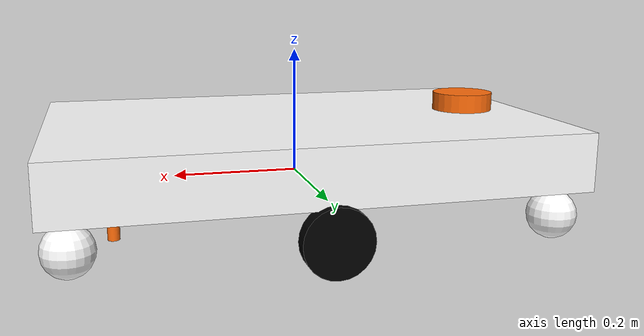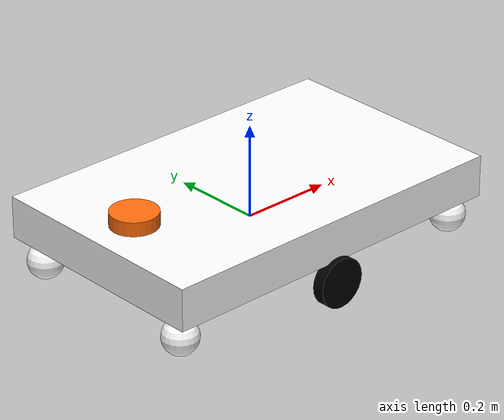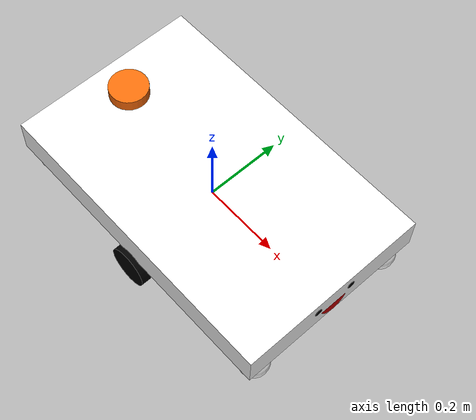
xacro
<?xml version="1.0"?>
<!-- Basic differential drive mobile base -->
<robot xmlns:xacro="http://www.ros.org/wiki/xacro" name="diffdrive_robot">
  <xacro:arg name="prefix" default="" />
  <xacro:arg name="use_mock_hardware" default="false" />

  <xacro:include filename="$(find next2_ros2control)/description/urdf/diffbot_description.urdf.xacro" />

  <!-- Import Rviz colors -->
  <xacro:include filename="$(find next2_ros2control)/description/urdf/diffbot.materials.xacro" />

  <!-- Import diffbot ros2_control description -->
  <xacro:include filename="$(find next2_ros2control)/description/ros2_control/diffbot.ros2_control.xacro" />

  <xacro:diffbot prefix="$(arg prefix)" />
  <xacro:include filename="$(find next2_ros2control)/description/urdf/face.xacro" />
  <xacro:include filename="$(find next2_ros2control)/description/urdf/lidar.xacro" />

  <xacro:diffbot_ros2_control
    name="DiffBot" prefix="$(arg prefix)" use_mock_hardware="$(arg use_mock_hardware)"/>

</robot>

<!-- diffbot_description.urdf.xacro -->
<robot xmlns:xacro="http://www.ros.org/wiki/xacro" name="next2_robot">

  <xacro:macro name="diffbot" params="prefix">

  <!-- Constants for robot dimensions -->
  <xacro:property name="PI" value="3.1415926535897931"/>
  <xacro:property name="base_mass" value="0.3" /> <!-- arbitrary value for base mass -->
  <xacro:property name="base_width" value="0.80" />
  <xacro:property name="base_length" value="0.50" />
  <xacro:property name="base_height" value="0.09" />
  <xacro:property name="wheel_mass" value="0.3" /> <!-- arbitrary value for wheel mass -->
  <xacro:property name="wheel_len" value="0.026" />
  <xacro:property name="wheel_radius" value="0.053" />
  <xacro:property name="caster_wheel_mass" value="0.1" /> <!-- arbitrary value for caster wheel mass -->
  <xacro:property name="caster_wheel_radius" value="0.038" />
  <xacro:property name="z_offset" value="-${base_height/2}" /> <!-- Space btw top of beam and the each joint -->

  <!-- Base Link -->
  <link name="${prefix}base_link">
    <collision>
      <origin xyz="0 0 0" rpy="0 0 0"/>
      <geometry>
        <box size="${base_width} ${base_length} ${base_height}"/>
      </geometry>
    </collision>

    <visual>
      <origin xyz="0 0 ${base_height/2}" rpy="0 0 0"/>
      <geometry>
        <box size="${base_width} ${base_length} ${base_height}"/>
      </geometry>
      <material name="white"/>
    </visual>

    <inertial>
      <origin xyz="0 0 0" rpy="0 0 0"/>
      <mass value="${base_mass}"/>
      <inertia
        ixx="${base_mass / 12.0 * (base_length*base_length + base_height*base_height)}" ixy="0.0" ixz="0.0"
        iyy="${base_mass / 12.0 * (base_height*base_height + base_width*base_width)}" iyz="0.0"
        izz="${base_mass / 12.0 * (base_width*base_width + base_length*base_length)}"/>
      </inertial>
    </link>

    <joint name="${prefix}left_wheel_joint" type="continuous">
      <parent link="${prefix}base_link"/>
      <child link="${prefix}left_wheel"/>
      <origin xyz="0 -${base_length/2} ${z_offset}" rpy="0 0 0"/>
      <axis xyz="0 1 0"/>
      <dynamics damping="0.2"/>
      <limit effort="100" velocity="1.0"/>
    </joint>

    <!-- left wheel Link -->
    <link name="${prefix}left_wheel">
      <collision>
        <origin xyz="0 0 0" rpy="${PI/2} 0 0"/>
        <geometry>
          <cylinder length="${wheel_len}" radius="${wheel_radius}"/>
        </geometry>
      </collision>

      <visual>
        <origin xyz="0 0 0" rpy="${PI/2} 0 0"/>
        <geometry>
          <cylinder length="${wheel_len}" radius="${wheel_radius}"/>
        </geometry>
        <material name="black"/>
      </visual>

      <inertial>
        <origin xyz="0 0 0" rpy="${PI/2} 0 0"/>
        <mass value="${wheel_mass}"/>
        <inertia
          ixx="${wheel_mass / 12.0 * (3*wheel_radius*wheel_radius + wheel_len*wheel_len)}" ixy="0.0" ixz="0.0"
          iyy="${wheel_mass / 12.0 * (3*wheel_radius*wheel_radius + wheel_len*wheel_len)}" iyz="0.0"
          izz="${wheel_mass / 2.0 * wheel_radius*wheel_radius}"/>
        </inertial>
      </link>

    <joint name="${prefix}right_wheel_joint" type="continuous">
      <parent link="${prefix}base_link"/>
      <child link="${prefix}right_wheel"/>
      <origin xyz="0 ${base_length/2} ${z_offset}" rpy="0 0 0"/>
      <axis xyz="0 1 0"/>
      <dynamics damping="0.2"/>
      <limit effort="100" velocity="1.0"/>
    </joint>

    <!-- right wheel Link -->
    <link name="${prefix}right_wheel">
      <collision>
        <origin xyz="0 0 0" rpy="${PI/2} 0 0"/>
        <geometry>
          <cylinder length="${wheel_len}" radius="${wheel_radius}"/>
        </geometry>
      </collision>

      <visual>
        <origin xyz="0 0 0" rpy="${PI/2} 0 0"/>
        <geometry>
          <cylinder length="${wheel_len}" radius="${wheel_radius}"/>
        </geometry>
        <material name="black"/>
      </visual>

      <inertial>
        <origin xyz="0 0 0" rpy="${PI/2} 0 0"/>
        <mass value="${wheel_mass}"/>
        <inertia
          ixx="${wheel_mass / 12.0 * (3*wheel_radius*wheel_radius + wheel_len*wheel_len)}" ixy="0.0" ixz="0.0"
          iyy="${wheel_mass / 12.0 * (3*wheel_radius*wheel_radius + wheel_len*wheel_len)}" iyz="0.0"
          izz="${wheel_mass / 2.0 * wheel_radius*wheel_radius}"/>
        </inertial>
      </link>

    <joint name="${prefix}caster_frontal_wheel_left_joint" type="fixed">
      <parent link="${prefix}base_link"/>
      <child link="${prefix}caster_frontal_left_wheel"/>
      <origin xyz="${base_width/2 - caster_wheel_radius} 0.20  ${z_offset}" rpy="0 0 0"/>
    </joint>

    <!-- caster frontal wheel left Link -->
    <link name="${prefix}caster_frontal_left_wheel">
      <collision>
        <origin xyz="0 0 0" rpy="0 0 0"/>
        <geometry>
          <sphere radius="${caster_wheel_radius}"/>
        </geometry>
      </collision>

      <visual>
        <origin xyz="0 0 0" rpy="0 0 0"/>
        <geometry>
          <sphere radius="${caster_wheel_radius}"/>
        </geometry>
        <material name="white"/>
      </visual>

      <inertial>
        <origin xyz="0 0 0" rpy="0 0 0"/>
        <mass value="${caster_wheel_mass}"/>
        <inertia
          ixx="${caster_wheel_mass * 0.4 * (caster_wheel_radius * caster_wheel_radius)}" ixy="0.0" ixz="0.0"
          iyy="${caster_wheel_mass * 0.4 * (caster_wheel_radius * caster_wheel_radius)}" iyz="0.0"
          izz="${caster_wheel_mass * 0.4 * (caster_wheel_radius * caster_wheel_radius)}"/>
        </inertial>
      </link>

    <joint name="${prefix}caster_frontal_wheel_right_joint" type="fixed">
      <parent link="${prefix}base_link"/>
      <child link="${prefix}caster_frontal_right_wheel"/>
      <origin xyz="${base_width/2 - caster_wheel_radius} -0.20 ${z_offset}" rpy="0 0 0"/>
    </joint>

    <!-- caster frontal wheel right Link -->
    <link name="${prefix}caster_frontal_right_wheel">
      <collision>
        <origin xyz="0 0 0" rpy="0 0 0"/>
        <geometry>
          <sphere radius="${caster_wheel_radius}"/>
        </geometry>
      </collision>

      <visual>
        <origin xyz="0 0 0" rpy="0 0 0"/>
        <geometry>
          <sphere radius="${caster_wheel_radius}"/>
        </geometry>
        <material name="white"/>
      </visual>

      <inertial>
        <origin xyz="0 0 0" rpy="0 0 0"/>
        <mass value="${caster_wheel_mass}"/>
        <inertia
          ixx="${caster_wheel_mass * 0.4 * (caster_wheel_radius * caster_wheel_radius)}" ixy="0.0" ixz="0.0"
          iyy="${caster_wheel_mass * 0.4 * (caster_wheel_radius * caster_wheel_radius)}" iyz="0.0"
          izz="${caster_wheel_mass * 0.4 * (caster_wheel_radius * caster_wheel_radius)}"/>
        </inertial>
      </link>

    <joint name="${prefix}caster_rear_wheel_left_joint" type="fixed">
      <parent link="${prefix}base_link"/>
      <child link="${prefix}caster_rear_left_wheel"/>
      <origin xyz="${-base_width/2 + caster_wheel_radius} 0.20 ${z_offset}" rpy="0 0 0"/>
    </joint>

    <!-- caster rear wheel left Link -->
    <link name="${prefix}caster_rear_left_wheel">
      <collision>
        <origin xyz="0 0 0" rpy="0 0 0"/>
        <geometry>
          <sphere radius="${caster_wheel_radius}"/>
        </geometry>
      </collision>

      <visual>
        <origin xyz="0 0 0" rpy="0 0 0"/>
        <geometry>
          <sphere radius="${caster_wheel_radius}"/>
        </geometry>
        <material name="white"/>
      </visual>

      <inertial>
        <origin xyz="0 0 0" rpy="0 0 0"/>
        <mass value="${caster_wheel_mass}"/>
        <inertia
          ixx="${caster_wheel_mass * 0.4 * (caster_wheel_radius * caster_wheel_radius)}" ixy="0.0" ixz="0.0"
          iyy="${caster_wheel_mass * 0.4 * (caster_wheel_radius * caster_wheel_radius)}" iyz="0.0"
          izz="${caster_wheel_mass * 0.4 * (caster_wheel_radius * caster_wheel_radius)}"/>
        </inertial>
      </link>

    <joint name="${prefix}caster_rear_wheel_right_joint" type="fixed">
      <parent link="${prefix}base_link"/>
      <child link="${prefix}caster_rear_right_wheel"/>
      <origin xyz="${-base_width/2 + caster_wheel_radius} -0.20 ${z_offset}" rpy="0 0 0"/>
    </joint>

    <!-- caster rear wheel Link -->
    <link name="${prefix}caster_rear_right_wheel">
      <collision>
        <origin xyz="0 0 0" rpy="0 0 0"/>
        <geometry>
          <sphere radius="${caster_wheel_radius}"/>
        </geometry>
      </collision>

      <visual>
        <origin xyz="0 0 0" rpy="0 0 0"/>
        <geometry>
          <sphere radius="${caster_wheel_radius}"/>
        </geometry>
        <material name="white"/>
      </visual>

      <inertial>
        <origin xyz="0 0 0" rpy="0 0 0"/>
        <mass value="${caster_wheel_mass}"/>
        <inertia
          ixx="${caster_wheel_mass * 0.4 * (caster_wheel_radius * caster_wheel_radius)}" ixy="0.0" ixz="0.0"
          iyy="${caster_wheel_mass * 0.4 * (caster_wheel_radius * caster_wheel_radius)}" iyz="0.0"
          izz="${caster_wheel_mass * 0.4 * (caster_wheel_radius * caster_wheel_radius)}"/>
        </inertial>
      </link>

  </xacro:macro>

</robot>

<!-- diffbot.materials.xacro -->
<!--
Copied from ROS1 example:
https://github.com/ros-simulation/gazebo_ros_demos/blob/kinetic-devel/rrbot_description/urdf/materials.xacro
-->
<robot>

  <material name="black">
    <color rgba="0.0 0.0 0.0 1.0"/>
  </material>

  <material name="blue">
    <color rgba="0.0 0.0 0.8 1.0"/>
  </material>

  <material name="green">
    <color rgba="0.0 0.8 0.0 1.0"/>
  </material>

  <material name="grey">
    <color rgba="0.2 0.2 0.2 1.0"/>
  </material>

  <material name="orange">
    <color rgba="${255/255} ${108/255} ${10/255} 1.0"/>
  </material>

  <material name="brown">
    <color rgba="${222/255} ${207/255} ${195/255} 1.0"/>
  </material>

  <material name="red">
    <color rgba="0.8 0.0 0.0 1.0"/>
  </material>

  <material name="white">
    <color rgba="1.0 1.0 1.0 1.0"/>
  </material>

</robot>

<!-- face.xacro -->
<robot xmlns:xacro="http://www.ros.org/wiki/xacro" >

    <joint name="face_joint" type="fixed">
        <parent link="base_link"/>
        <child link="face_link"/>
        <origin xyz="0.40 0 ${0.09/2}" rpy="0 0 0"/>
    </joint>

    <link name="face_link">
        <visual>
            <origin xyz="0 0.05 0.01" rpy="0 ${pi/2} 0"/>
            <geometry>
                <cylinder radius="0.01" length="0.002"/>
            </geometry>
            <material name="black"/>
        </visual>

        <visual>
            <origin xyz="0 -0.05 0.01" rpy="0 ${pi/2} 0"/>
            <geometry>
                <cylinder radius="0.01" length="0.002"/>
            </geometry>
            <material name="black"/>
        </visual>

        <visual>
            <origin xyz="-0.011 0 -0.00" rpy="0 ${1.5} 0"/>
            <geometry>
                <cylinder radius="0.04" length="0.02"/>
            </geometry>
            <material name="red"/>
        </visual>
    </link>

</robot>

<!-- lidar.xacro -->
<robot xmlns:xacro="http://www.ros.org/wiki/xacro">

    <!-- Pi = 3.14159 -->
    <joint name="laser_joint" type="fixed">
        <parent link="base_link"/>
        <child link="laser_frame"/>
        <origin xyz="0.30 0 0." rpy="0 0 0"/>
    </joint>

    <link name="laser_frame">
        <visual>
            <geometry>
                <cylinder radius="0.05" length="0.04"/>
            </geometry>
            <material name="orange"/>
        </visual>
        <visual>
            <origin xyz="0 0 -0.05"/>
            <geometry>
                <cylinder radius="0.01" length="0.1"/>
            </geometry>
            <material name="orange"/>
        </visual>
        <collision>
            <geometry>
                <cylinder radius="0.05" length="0.04"/>
            </geometry>
        </collision>

    </link>

    <joint name="laser_joint2" type="fixed">
        <parent link="base_link"/>
        <child link="laser_frame2"/>
        <origin xyz="-0.30 0 0.10" rpy="0 0 3.14159"/>
    </joint>

    <link name="laser_frame2">
        <visual>
            <geometry>
                <cylinder radius="0.05" length="0.04"/>
            </geometry>
            <material name="orange"/>
        </visual>
        <visual>
            <origin xyz="0 0 -0.05"/>
            <geometry>
                <cylinder radius="0.01" length="0.1"/>
            </geometry>
            <material name="orange"/>
        </visual>
        <collision>
            <geometry>
                <cylinder radius="0.05" length="0.04"/>
            </geometry>
        </collision>

    </link>

</robot>
